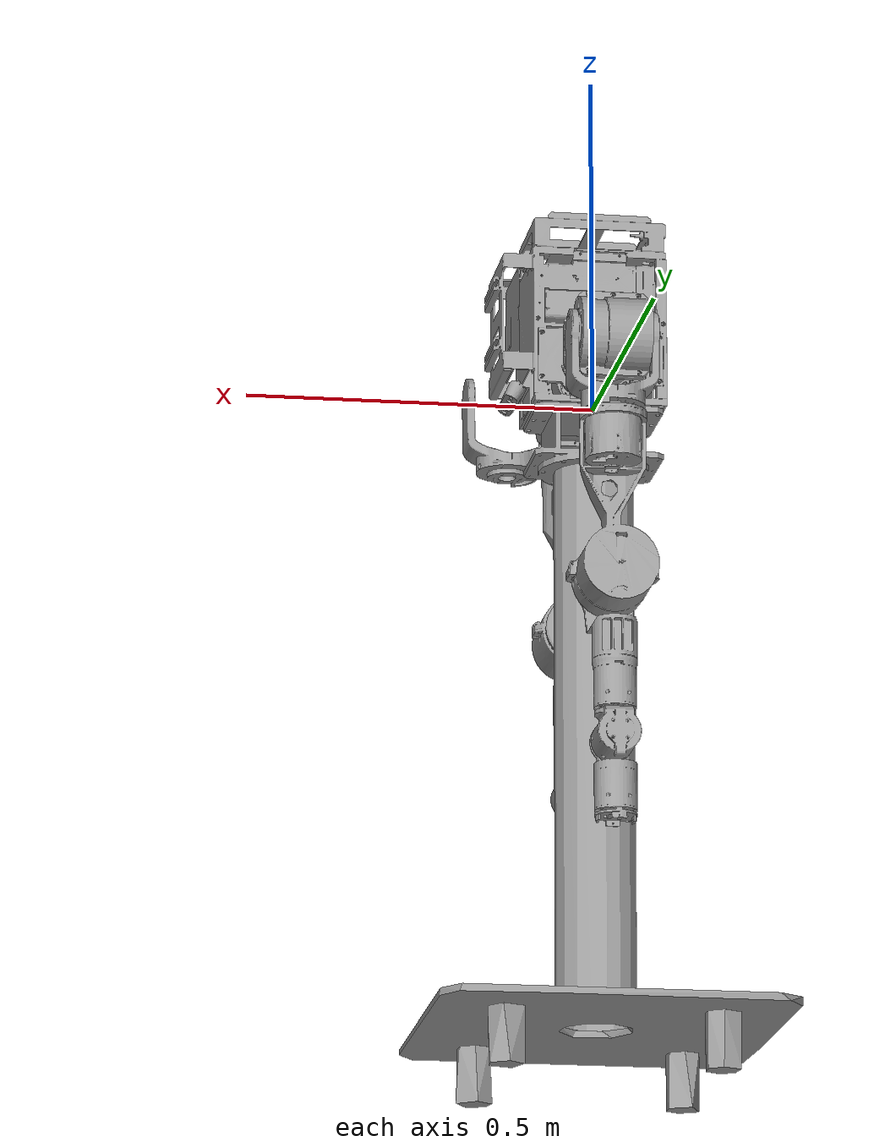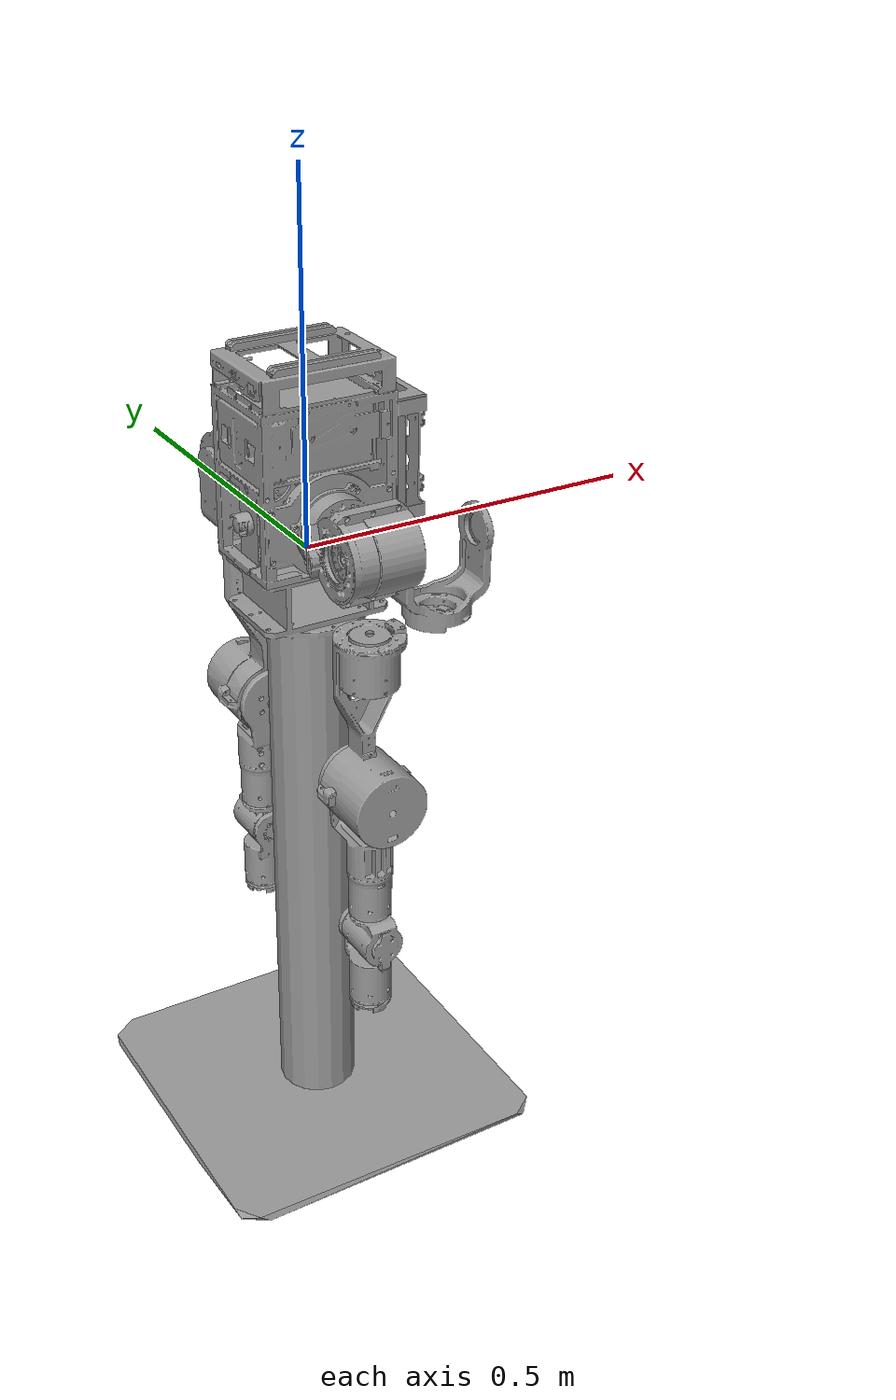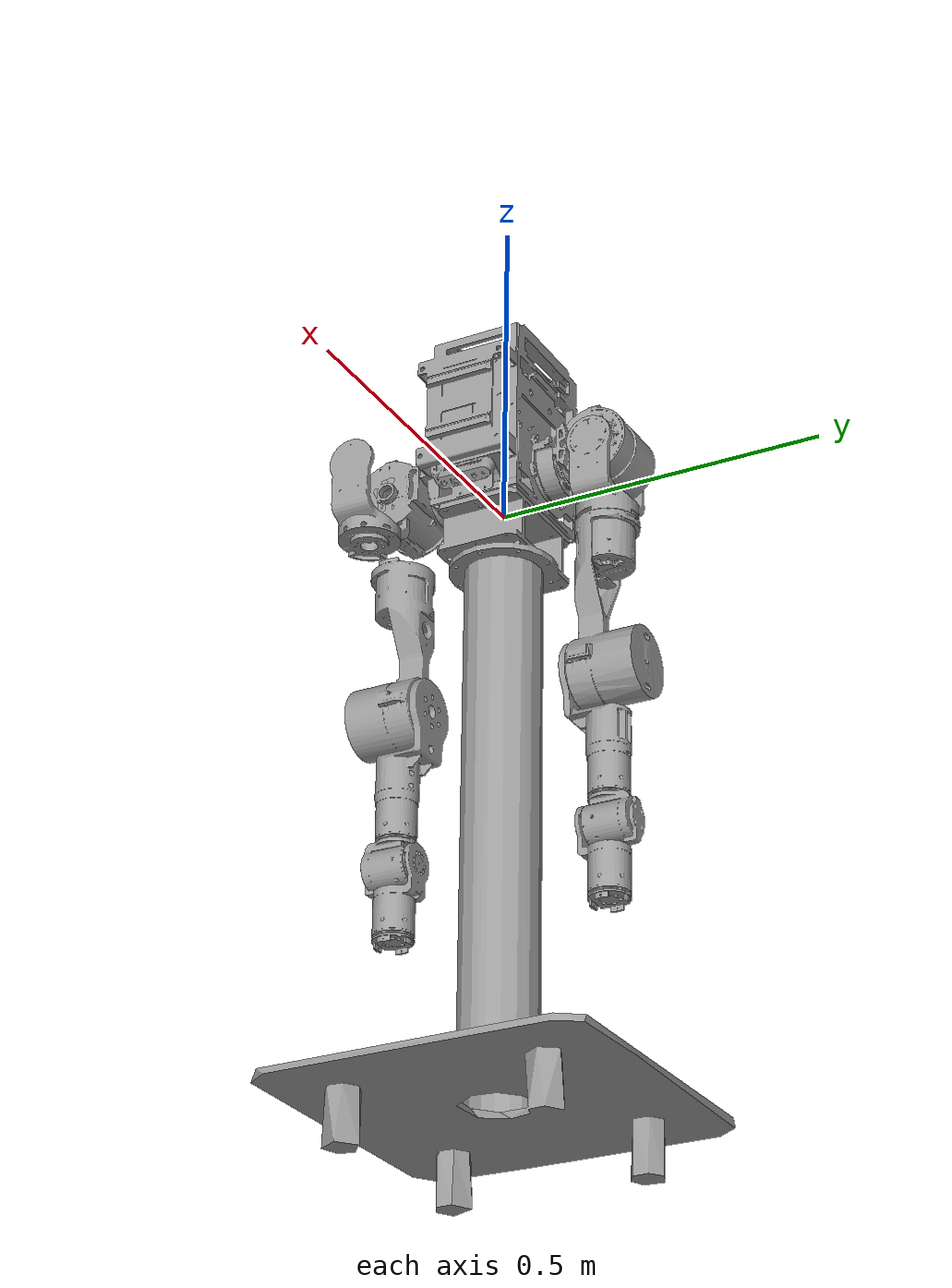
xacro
<?xml version="1.0"?>

<robot name="arm_tron2_description" xmlns:xacro="http://www.ros.org/wiki/xacro">
    <xacro:arg name="use_gazebo" default="false"/>
    <xacro:arg name="use_support" default="false"/>

    <!-- Include all component files -->
    <xacro:include filename="$(find robot_description)/tron2/ARM_TRON2/xacro/const.xacro"/>
    <xacro:include filename="$(find robot_description)/tron2/ARM_TRON2/xacro/materials.xacro"/>
    <xacro:include filename="$(find robot_description)/tron2/ARM_TRON2/xacro/arm.xacro"/>
    <xacro:include filename="$(find robot_description)/tron2/ARM_TRON2/xacro/gazebo.xacro"/>
    <xacro:include filename="$(find robot_description)/tron2/ARM_TRON2/xacro/ros2_control_interface.xacro"/>

    <!-- Support mode will add an additional stick on the top -->
    <xacro:if value="$(arg use_support)">
        <link name="world"/>
        <joint name="base_static_Joint" type="fixed">
            <origin rpy="0 0 0" xyz="0 0 0.3"/>
            <parent link="world"/>
            <child link="base_Link"/>
        </joint>
    </xacro:if>

    <!-- IMU Link -->
    <joint name="limx_imu_joint" type="fixed">
        <origin rpy="0. 0. 0." xyz="0. 0. 0."/>
        <parent link="base_Link"/>
        <child link="limx_imu"/>
    </joint>

    <link name="limx_imu">
        <inertial>
            <mass value="${imu_mass}"/>
            <origin rpy="0 0 0" xyz="0 0 0"/>
            <inertia ixx="0.000001" ixy="0" ixz="0" iyy="0.000001" iyz="0" izz="0.000001"/>
        </inertial>
        <visual>
            <origin rpy="0 0 0" xyz="0 0 0"/>
            <geometry>
                <box size="0.015 0.015 0.004"/>
            </geometry>
            <material name="orange"/>
        </visual>
    </link>

    <!-- Base Link -->
    <link name="base_Link">
        <inertial>
            <origin xyz="${base_com_x} ${base_com_y} ${base_com_z}" rpy="0 0 0"/>
            <mass value="${base_mass}"/>
            <inertia ixx="${base_ixx}" ixy="${base_ixy}" ixz="${base_ixz}"
                     iyy="${base_iyy}" iyz="${base_iyz}" izz="${base_izz}"/>
        </inertial>
        <visual>
            <origin xyz="0 0 0" rpy="0 0 0"/>
            <geometry>
                <mesh filename="package://robot_description/tron2/ARM_TRON2/meshes/base_Link.STL"/>
            </geometry>
            <material name="grey"/>
        </visual>
        <collision>
            <origin xyz="0 0 0" rpy="0 0 0"/>
            <geometry>
                <mesh filename="package://robot_description/tron2/ARM_TRON2/meshes/base_Link.STL"/>
            </geometry>
        </collision>
    </link>

    <!-- Additional base links -->
    <joint name="base_2_Joint" type="fixed">
        <origin xyz="-0.00044 9e-05 -0.08605" rpy="0 0 0"/>
        <parent link="base_Link"/>
        <child link="base_2_Link"/>
        <axis xyz="0 0 0"/>
    </joint>

    <link name="base_2_Link">
        <inertial>
            <origin xyz="${base_2_com_x} ${base_2_com_y} ${base_2_com_z}" rpy="0 0 0"/>
            <mass value="${base_2_mass}"/>
            <inertia ixx="0" ixy="0" ixz="0"
                     iyy="0" iyz="0" izz="0"/>
        </inertial>
        <visual>
            <origin xyz="0 0 0" rpy="0 0 0"/>
            <geometry>
                <mesh filename="package://robot_description/tron2/ARM_TRON2/meshes/base_2_Link.STL"/>
            </geometry>
            <material name="grey"/>
        </visual>
        <collision>
            <origin xyz="0 0 0" rpy="0 0 0"/>
            <geometry>
                <mesh filename="package://robot_description/tron2/ARM_TRON2/meshes/base_2_Link.STL"/>
            </geometry>
        </collision>
    </link>

    <joint name="base_3_joint" type="fixed">
        <origin xyz="0.0 0.0 -0.809" rpy="0 0 0"/>
        <parent link="base_2_Link"/>
        <child link="base_3_Link"/>
        <axis xyz="0 0 0"/>
    </joint>

    <link name="base_3_Link">
        <inertial>
            <origin xyz="${base_3_com_x} ${base_3_com_y} ${base_3_com_z}" rpy="0 0 0"/>
            <mass value="${base_3_mass}"/>
            <inertia ixx="0" ixy="0" ixz="0"
                     iyy="0" iyz="0" izz="0"/>
        </inertial>
        <visual>
            <origin xyz="0 0 0" rpy="0 0 0"/>
            <geometry>
                <mesh filename="package://robot_description/tron2/ARM_TRON2/meshes/base_3_Link.STL"/>
            </geometry>
            <material name="grey"/>
        </visual>
        <collision>
            <origin xyz="0 0 0" rpy="0 0 0"/>
            <geometry>
                <mesh filename="package://robot_description/tron2/ARM_TRON2/meshes/base_3_Link.STL"/>
            </geometry>
        </collision>
    </link>

    <!-- Left and Right Arms -->
    <xacro:arm name="L" mirror="1">
        <origin rpy="0 0 0" xyz="0 0 0"/>
    </xacro:arm>

    <xacro:arm name="R" mirror="-1">
        <origin rpy="0 0 0" xyz="0 0 0"/>
    </xacro:arm>

    <!-- ROS2 Control Configuration -->
    <xacro:if value="$(arg use_gazebo)">
        <ros2_control name="tron2_gazebo_ros2_control_settings" type="system">
            <hardware>
                <plugin>tron2_gazebo/Tron2HWSim</plugin>
            </hardware>
            <xacro:arm_ros2_control_interface arm_name="L"/>
            <xacro:arm_ros2_control_interface arm_name="R"/>
            <sensor name="imu_sensor">
                <frame_id name="limx_imu"/>
                <state_interface name="orientation.x"/>
                <state_interface name="orientation.y"/>
                <state_interface name="orientation.z"/>
                <state_interface name="orientation.w"/>
                <state_interface name="angular_velocity.x"/>
                <state_interface name="angular_velocity.y"/>
                <state_interface name="angular_velocity.z"/>
                <state_interface name="linear_acceleration.x"/>
                <state_interface name="linear_acceleration.y"/>
                <state_interface name="linear_acceleration.z"/>
            </sensor>
        </ros2_control>

        <gazebo>
            <plugin filename="libgazebo_ros2_control.so" name="gazebo_ros2_control">
                <robot_sim_type>tron2_gazebo/Tron2HWSim</robot_sim_type>
                <parameters>$(find tron2_gazebo)/config/default_tron2.yaml</parameters>
            </plugin>
        </gazebo>
    </xacro:if>

</robot>

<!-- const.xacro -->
<robot name="arm_tron2" xmlns:xacro="http://www.ros.org/wiki/xacro">

    <!-- Constants for robot dimensions -->
    <xacro:property name="PI" value="3.1415926535897931"/>

    <!-- joint limits -->
    <xacro:property name="damping" value="0.0"/>
    <xacro:property name="friction" value="0.0"/>

    <!-- IMU parameters -->
    <xacro:property name="imu_mass" value="0.01"/>

    <!-- Base Link parameters -->
    <xacro:property name="base_mass" value="8.041"/>
    <xacro:property name="base_com_x" value="7.013E-03"/>
    <xacro:property name="base_com_y" value="0.040E-03"/>
    <xacro:property name="base_com_z" value="100.262E-03"/>
    <xacro:property name="base_ixx" value="65206.281E-06"/>
    <xacro:property name="base_ixy" value="263.326E-06"/>
    <xacro:property name="base_ixz" value="1546.898E-06"/>
    <xacro:property name="base_iyy" value="67132.292E-06"/>
    <xacro:property name="base_iyz" value="-8.654E-06"/>
    <xacro:property name="base_izz" value="58274.035E-06"/>

    <!-- Abad Link parameters (left) -->
    <xacro:property name="abad_mass" value="2.426"/>
    <xacro:property name="abad_com_x" value="10.597E-03"/>
    <xacro:property name="abad_com_y" value="59.042E-03"/>
    <xacro:property name="abad_com_z" value="-0.086E-03"/>
    <xacro:property name="abad_ixx" value="3858.889E-06"/>
    <xacro:property name="abad_ixy" value="-86.387E-06"/>
    <xacro:property name="abad_ixz" value="-9.506E-06"/>
    <xacro:property name="abad_iyy" value="4137.575E-06"/>
    <xacro:property name="abad_iyz" value="-0.429E-06"/>
    <xacro:property name="abad_izz" value="4077.094E-06"/>

    <!-- Hip Link parameters (left) -->
    <xacro:property name="hip_mass" value="0.503"/>
    <xacro:property name="hip_com_x" value="-47.813E-03"/>
    <xacro:property name="hip_com_y" value="0.265E-03"/>
    <xacro:property name="hip_com_z" value="-58.577E-03"/>
    <xacro:property name="hip_ixx" value="1254.656E-06"/>
    <xacro:property name="hip_ixy" value="-2.958E-06"/>
    <xacro:property name="hip_ixz" value="-20.051E-06"/>
    <xacro:property name="hip_iyy" value="2046.419E-06"/>
    <xacro:property name="hip_iyz" value="6.867E-06"/>
    <xacro:property name="hip_izz" value="1300.557E-06"/>

    <!-- Yaw Link parameters (left) -->
    <xacro:property name="yaw_mass" value="3.436"/>
    <xacro:property name="yaw_com_x" value="0.048E-03"/>
    <xacro:property name="yaw_com_y" value="-5.739E-03"/>
    <xacro:property name="yaw_com_z" value="-169.935E-03"/>
    <xacro:property name="yaw_ixx" value="35177.279E-06"/>
    <xacro:property name="yaw_ixy" value="-8.837E-06"/>
    <xacro:property name="yaw_ixz" value="35.725E-06"/>
    <xacro:property name="yaw_iyy" value="35265.280E-06"/>
    <xacro:property name="yaw_iyz" value="-379.998E-06"/>
    <xacro:property name="yaw_izz" value="4712.777E-06"/>

    <!-- Knee Link parameters (left) -->
    <xacro:property name="knee_mass" value="1.192"/>
    <xacro:property name="knee_com_x" value="0.007E-03"/>
    <xacro:property name="knee_com_y" value="29.496E-03"/>
    <xacro:property name="knee_com_z" value="-111.270E-03"/>
    <xacro:property name="knee_ixx" value="5004.847E-06"/>
    <xacro:property name="knee_ixy" value="-0.362E-06"/>
    <xacro:property name="knee_ixz" value="-3.512E-06"/>
    <xacro:property name="knee_iyy" value="4709.215E-06"/>
    <xacro:property name="knee_iyz" value="1138.592E-06"/>
    <xacro:property name="knee_izz" value="1142.402E-06"/>

    <!-- Wrist Yaw1 Link parameters (left) -->
    <xacro:property name="wrist_yaw1_mass" value="0.639"/>
    <xacro:property name="wrist_yaw1_com_x" value="-0.069E-03"/>
    <xacro:property name="wrist_yaw1_com_y" value="4.349E-03"/>
    <xacro:property name="wrist_yaw1_com_z" value="-34.875E-03"/>
    <xacro:property name="wrist_yaw1_ixx" value="524.851E-06"/>
    <xacro:property name="wrist_yaw1_ixy" value="1.091E-06"/>
    <xacro:property name="wrist_yaw1_ixz" value="-0.270E-06"/>
    <xacro:property name="wrist_yaw1_iyy" value="456.736E-06"/>
    <xacro:property name="wrist_yaw1_iyz" value="-1.249E-06"/>
    <xacro:property name="wrist_yaw1_izz" value="473.489E-06"/>

    <!-- Wrist Roll Link parameters (left) -->
    <xacro:property name="wrist_roll_mass" value="0.643"/>
    <xacro:property name="wrist_roll_com_x" value="0.068E-03"/>
    <xacro:property name="wrist_roll_com_y" value="27.310E-03"/>
    <xacro:property name="wrist_roll_com_z" value="-66.262E-03"/>
    <xacro:property name="wrist_roll_ixx" value="810.706E-06"/>
    <xacro:property name="wrist_roll_ixy" value="-0.029E-06"/>
    <xacro:property name="wrist_roll_ixz" value="-0.798E-06"/>
    <xacro:property name="wrist_roll_iyy" value="745.238E-06"/>
    <xacro:property name="wrist_roll_iyz" value="138.208E-06"/>
    <xacro:property name="wrist_roll_izz" value="472.366E-06"/>

    <!-- Wrist Yaw2 Link parameters (left) -->
    <xacro:property name="wrist_yaw2_mass" value="0.033"/>
    <xacro:property name="wrist_yaw2_com_x" value="-0.053E-03"/>
    <xacro:property name="wrist_yaw2_com_y" value="0.442E-03"/>
    <xacro:property name="wrist_yaw2_com_z" value="-3.729E-03"/>
    <xacro:property name="wrist_yaw2_ixx" value="8.375E-06"/>
    <xacro:property name="wrist_yaw2_ixy" value="-0.036E-06"/>
    <xacro:property name="wrist_yaw2_ixz" value="-0.003E-06"/>
    <xacro:property name="wrist_yaw2_iyy" value="7.966E-06"/>
    <xacro:property name="wrist_yaw2_iyz" value="0.068E-06"/>
    <xacro:property name="wrist_yaw2_izz" value="15.814E-06"/>

    <!-- Additional base links -->
    <xacro:property name="base_2_mass" value="0.1"/>
    <xacro:property name="base_2_com_x" value="16.961E-03"/>
    <xacro:property name="base_2_com_y" value="-0.397E-03"/>
    <xacro:property name="base_2_com_z" value="77.46E-03"/>

    <xacro:property name="base_3_mass" value="0.1"/>
    <xacro:property name="base_3_com_x" value="16.961E-03"/>
    <xacro:property name="base_3_com_y" value="-0.397E-03"/>
    <xacro:property name="base_3_com_z" value="77.46E-03"/>

    <!-- Joint positions and orientations -->
    <!-- Abad joint position -->
    <xacro:property name="abad_offset_x" value="-0.00049"/>
    <xacro:property name="abad_offset_y" value="0.10649"/>
    <xacro:property name="abad_offset_z" value="0.0586"/>

    <!-- Hip joint position -->
    <xacro:property name="hip_offset_x" value="0.0497"/>
    <xacro:property name="hip_offset_y" value="0.062"/>
    <xacro:property name="hip_offset_z" value="0.0"/>

    <!-- Yaw joint position -->
    <xacro:property name="yaw_offset_x" value="-0.0497"/>
    <xacro:property name="yaw_offset_y" value="0.0"/>
    <xacro:property name="yaw_offset_z" value="-0.1127"/>

    <!-- Knee joint position -->
    <xacro:property name="knee_offset_x" value="0.0"/>
    <xacro:property name="knee_offset_y" value="-0.04115"/>
    <xacro:property name="knee_offset_z" value="-0.2373"/>

    <!-- Wrist yaw1 joint position -->
    <xacro:property name="wrist_yaw1_offset_x" value="0.0"/>
    <xacro:property name="wrist_yaw1_offset_y" value="0.04115"/>
    <xacro:property name="wrist_yaw1_offset_z" value="-0.1963"/>

    <!-- Wrist roll joint position -->
    <xacro:property name="wrist_roll_offset_x" value="0.0"/>
    <xacro:property name="wrist_roll_offset_y" value="-0.031"/>
    <xacro:property name="wrist_roll_offset_z" value="-0.038"/>

    <!-- Wrist yaw2 joint position -->
    <xacro:property name="wrist_yaw2_offset_x" value="0.0"/>
    <xacro:property name="wrist_yaw2_offset_y" value="0.031"/>
    <xacro:property name="wrist_yaw2_offset_z" value="-0.1083"/>

    <!-- Joint limits -->
    <!-- Abad joint limits -->
    <xacro:property name="abad_lower" value="-3.141592653589793"/>
    <xacro:property name="abad_upper" value="2.600540585471551"/>
    <xacro:property name="abad_effort" value="130"/>
    <xacro:property name="abad_velocity" value="12.57"/>

    <!-- Hip joint limits -->
    <xacro:property name="hip_L_lower" value="-0.2605776573227534"/>
    <xacro:property name="hip_L_upper" value="2.1131489961203007"/>
    <xacro:property name="hip_R_lower" value="-2.1131489961203007"/>
    <xacro:property name="hip_R_upper" value="0.2605776573227534"/>
    <xacro:property name="hip_effort" value="130"/>
    <xacro:property name="hip_velocity" value="12.57"/>

    <!-- Yaw joint limits -->
    <xacro:property name="yaw_L_lower" value="-2.705260340591211"/>
    <xacro:property name="yaw_L_upper" value="1.4835298641951802"/>
    <xacro:property name="yaw_R_lower" value="-1.4835298641951802"/>
    <xacro:property name="yaw_R_upper" value="2.705260340591211"/>
    <xacro:property name="yaw_effort" value="40"/>
    <xacro:property name="yaw_velocity" value="31.83"/>

    <!-- Knee joint limits -->
    <xacro:property name="knee_lower" value="-2.6179938779914944"/>
    <xacro:property name="knee_upper" value="2.6179938779914944"/>
    <xacro:property name="knee_effort" value="130"/>
    <xacro:property name="knee_velocity" value="12.57"/>

    <!-- Wrist yaw1 joint limits -->
    <xacro:property name="wrist_yaw1_lower" value="-2.844886680750757"/>
    <xacro:property name="wrist_yaw1_upper" value="2.844886680750757"/>
    <xacro:property name="wrist_yaw1_effort" value="20"/>
    <xacro:property name="wrist_yaw1_velocity" value="17.8"/>

    <!-- Wrist roll joint limits -->
    <xacro:property name="wrist_roll_lower" value="-1.710422666954443"/>
    <xacro:property name="wrist_roll_upper" value="1.710422666954443"/>
    <xacro:property name="wrist_roll_effort" value="20"/>
    <xacro:property name="wrist_roll_velocity" value="17.8"/>

    <!-- Wrist yaw2 joint limits -->
    <xacro:property name="wrist_yaw2_lower" value="-2.8797932657906435"/>
    <xacro:property name="wrist_yaw2_upper" value="2.8797932657906435"/>
    <xacro:property name="wrist_yaw2_effort" value="20"/>
    <xacro:property name="wrist_yaw2_velocity" value="17.8"/>

</robot>

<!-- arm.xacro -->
<robot xmlns:xacro="http://www.ros.org/wiki/xacro">

    <xacro:include filename="$(find robot_description)/tron2/ARM_TRON2/xacro/transmission.xacro"/>

    <xacro:macro name="arm" params="name mirror *origin">

        <joint name="abad_${name}_Joint" type="revolute">
            <origin xyz="${abad_offset_x} ${abad_offset_y*mirror} ${abad_offset_z}" rpy="0 0 0"/>
            <parent link="base_Link"/>
            <child link="abad_${name}_Link"/>
            <axis xyz="0 1 0"/>
            <limit lower="${abad_lower}" upper="${abad_upper}" effort="${abad_effort}" velocity="${abad_velocity}"/>
        </joint>

        <link name="abad_${name}_Link">
            <inertial>
                <origin xyz="${abad_com_x} ${abad_com_y*mirror} ${abad_com_z}" rpy="0 0 0"/>
                <mass value="${abad_mass}"/>
                <inertia ixx="${abad_ixx}" ixy="${abad_ixy*mirror}" ixz="${abad_ixz}"
                         iyy="${abad_iyy}" iyz="${abad_iyz*mirror}" izz="${abad_izz}"/>
            </inertial>
            <visual>
                <origin xyz="0 0 0" rpy="0 0 0"/>
                <geometry>
                    <mesh filename="package://robot_description/tron2/ARM_TRON2/meshes/abad_${name}_Link.STL"/>
                </geometry>
                <material name="grey"/>
            </visual>
            <collision>
                <origin xyz="0 0 0" rpy="0 0 0"/>
                <geometry>
                    <mesh filename="package://robot_description/tron2/ARM_TRON2/meshes/abad_${name}_Link.STL"/>
                </geometry>
            </collision>
        </link>

        <joint name="hip_${name}_Joint" type="revolute">
            <origin xyz="${hip_offset_x} ${hip_offset_y*mirror} ${hip_offset_z}" rpy="0 0 0"/>
            <parent link="abad_${name}_Link"/>
            <child link="hip_${name}_Link"/>
            <axis xyz="1 0 0"/>
            <xacro:if value="${name == 'L'}">
                <limit lower="${hip_L_lower}" upper="${hip_L_upper}" effort="${hip_effort}" velocity="${hip_velocity}"/>
            </xacro:if>
            <xacro:if value="${name == 'R'}">
                <limit lower="${hip_R_lower}" upper="${hip_R_upper}" effort="${hip_effort}" velocity="${hip_velocity}"/>
            </xacro:if>
        </joint>

        <link name="hip_${name}_Link">
            <inertial>
                <origin xyz="${hip_com_x} ${hip_com_y*mirror} ${hip_com_z}" rpy="0 0 0"/>
                <mass value="${hip_mass}"/>
                <inertia ixx="${hip_ixx}" ixy="${hip_ixy*mirror}" ixz="${hip_ixz}"
                         iyy="${hip_iyy}" iyz="${hip_iyz*mirror}" izz="${hip_izz}"/>
            </inertial>
            <visual>
                <origin xyz="0 0 0" rpy="0 0 0"/>
                <geometry>
                    <mesh filename="package://robot_description/tron2/ARM_TRON2/meshes/hip_${name}_Link.STL"/>
                </geometry>
                <material name="grey"/>
            </visual>
            <collision>
                <origin xyz="0 0 0" rpy="0 0 0"/>
                <geometry>
                    <mesh filename="package://robot_description/tron2/ARM_TRON2/meshes/hip_${name}_Link.STL"/>
                </geometry>
            </collision>
        </link>

        <joint name="yaw_${name}_Joint" type="revolute">
            <origin xyz="${yaw_offset_x} ${yaw_offset_y*mirror} ${yaw_offset_z}" rpy="0 0 0"/>
            <parent link="hip_${name}_Link"/>
            <child link="yaw_${name}_Link"/>
            <axis xyz="0 0 1"/>
            <xacro:if value="${name == 'L'}">
                <limit lower="${yaw_L_lower}" upper="${yaw_L_upper}" effort="${yaw_effort}" velocity="${yaw_velocity}"/>
            </xacro:if>
            <xacro:if value="${name == 'R'}">
                <limit lower="${yaw_R_lower}" upper="${yaw_R_upper}" effort="${yaw_effort}" velocity="${yaw_velocity}"/>
            </xacro:if>
        </joint>

        <link name="yaw_${name}_Link">
            <inertial>
                <origin xyz="${yaw_com_x} ${yaw_com_y*mirror} ${yaw_com_z}" rpy="0 0 0"/>
                <mass value="${yaw_mass}"/>
                <inertia ixx="${yaw_ixx}" ixy="${yaw_ixy*mirror}" ixz="${yaw_ixz}"
                         iyy="${yaw_iyy}" iyz="${yaw_iyz*mirror}" izz="${yaw_izz}"/>
            </inertial>
            <visual>
                <origin xyz="0 0 0" rpy="0 0 0"/>
                <geometry>
                    <mesh filename="package://robot_description/tron2/ARM_TRON2/meshes/yaw_${name}_Link.STL"/>
                </geometry>
                <material name="grey"/>
            </visual>
            <collision>
                <origin xyz="0 0 0" rpy="0 0 0"/>
                <geometry>
                    <mesh filename="package://robot_description/tron2/ARM_TRON2/meshes/yaw_${name}_Link.STL"/>
                </geometry>
            </collision>
        </link>

        <joint name="knee_${name}_Joint" type="revolute">
            <origin xyz="${knee_offset_x} ${knee_offset_y*mirror} ${knee_offset_z}" rpy="0 0 0"/>
            <parent link="yaw_${name}_Link"/>
            <child link="knee_${name}_Link"/>
            <axis xyz="0 1 0"/>
            <limit lower="${knee_lower}" upper="${knee_upper}" effort="${knee_effort}" velocity="${knee_velocity}"/>
        </joint>

        <link name="knee_${name}_Link">
            <inertial>
                <origin xyz="${knee_com_x} ${knee_com_y*mirror} ${knee_com_z}" rpy="0 0 0"/>
                <mass value="${knee_mass}"/>
                <inertia ixx="${knee_ixx}" ixy="${knee_ixy*mirror}" ixz="${knee_ixz}"
                         iyy="${knee_iyy}" iyz="${knee_iyz*mirror}" izz="${knee_izz}"/>
            </inertial>
            <visual>
                <origin xyz="0 0 0" rpy="0 0 0"/>
                <geometry>
                    <mesh filename="package://robot_description/tron2/ARM_TRON2/meshes/knee_${name}_Link.STL"/>
                </geometry>
                <material name="grey"/>
            </visual>
            <collision>
                <origin xyz="0 0 0" rpy="0 0 0"/>
                <geometry>
                    <mesh filename="package://robot_description/tron2/ARM_TRON2/meshes/knee_${name}_Link.STL"/>
                </geometry>
            </collision>
        </link>

        <joint name="wrist_yaw1_${name}_Joint" type="revolute">
            <origin xyz="${wrist_yaw1_offset_x} ${wrist_yaw1_offset_y*mirror} ${wrist_yaw1_offset_z}" rpy="0 0 0"/>
            <parent link="knee_${name}_Link"/>
            <child link="wrist_yaw1_${name}_Link"/>
            <axis xyz="0 0 1"/>
            <limit lower="${wrist_yaw1_lower}" upper="${wrist_yaw1_upper}" effort="${wrist_yaw1_effort}" velocity="${wrist_yaw1_velocity}"/>
        </joint>

        <link name="wrist_yaw1_${name}_Link">
            <inertial>
                <origin xyz="${wrist_yaw1_com_x} ${wrist_yaw1_com_y*mirror} ${wrist_yaw1_com_z}" rpy="0 0 0"/>
                <mass value="${wrist_yaw1_mass}"/>
                <inertia ixx="${wrist_yaw1_ixx}" ixy="${wrist_yaw1_ixy*mirror}" ixz="${wrist_yaw1_ixz}"
                         iyy="${wrist_yaw1_iyy}" iyz="${wrist_yaw1_iyz*mirror}" izz="${wrist_yaw1_izz}"/>
            </inertial>
            <visual>
                <origin xyz="0 0 0" rpy="0 0 0"/>
                <geometry>
                    <mesh filename="package://robot_description/tron2/ARM_TRON2/meshes/wrist_yaw1_${name}_Link.STL"/>
                </geometry>
                <material name="grey"/>
            </visual>
            <collision>
                <origin xyz="0 0 0" rpy="0 0 0"/>
                <geometry>
                    <mesh filename="package://robot_description/tron2/ARM_TRON2/meshes/wrist_yaw1_${name}_Link.STL"/>
                </geometry>
            </collision>
        </link>

        <joint name="wrist_roll_${name}_Joint" type="revolute">
            <origin xyz="${wrist_roll_offset_x} ${wrist_roll_offset_y*mirror} ${wrist_roll_offset_z}" rpy="0 0 0"/>
            <parent link="wrist_yaw1_${name}_Link"/>
            <child link="wrist_roll_${name}_Link"/>
            <axis xyz="0 1 0"/>
            <limit lower="${wrist_roll_lower}" upper="${wrist_roll_upper}" effort="${wrist_roll_effort}" velocity="${wrist_roll_velocity}"/>
        </joint>

        <link name="wrist_roll_${name}_Link">
            <inertial>
                <origin xyz="${wrist_roll_com_x} ${wrist_roll_com_y*mirror} ${wrist_roll_com_z}" rpy="0 0 0"/>
                <mass value="${wrist_roll_mass}"/>
                <inertia ixx="${wrist_roll_ixx}" ixy="${wrist_roll_ixy*mirror}" ixz="${wrist_roll_ixz}"
                         iyy="${wrist_roll_iyy}" iyz="${wrist_roll_iyz*mirror}" izz="${wrist_roll_izz}"/>
            </inertial>
            <visual>
                <origin xyz="0 0 0" rpy="0 0 0"/>
                <geometry>
                    <mesh filename="package://robot_description/tron2/ARM_TRON2/meshes/wrist_roll_${name}_Link.STL"/>
                </geometry>
                <material name="grey"/>
            </visual>
            <collision>
                <origin xyz="0 0 0" rpy="0 0 0"/>
                <geometry>
                    <mesh filename="package://robot_description/tron2/ARM_TRON2/meshes/wrist_roll_${name}_Link.STL"/>
                </geometry>
            </collision>
        </link>

        <joint name="wrist_yaw2_${name}_Joint" type="revolute">
            <origin xyz="${wrist_yaw2_offset_x} ${wrist_yaw2_offset_y*mirror} ${wrist_yaw2_offset_z}" rpy="0 0 0"/>
            <parent link="wrist_roll_${name}_Link"/>
            <child link="wrist_yaw2_${name}_Link"/>
            <axis xyz="0 0 1"/>
            <limit lower="${wrist_yaw2_lower}" upper="${wrist_yaw2_upper}" effort="${wrist_yaw2_effort}" velocity="${wrist_yaw2_velocity}"/>
        </joint>

        <link name="wrist_yaw2_${name}_Link">
            <inertial>
                <origin xyz="${wrist_yaw2_com_x} ${wrist_yaw2_com_y*mirror} ${wrist_yaw2_com_z}" rpy="0 0 0"/>
                <mass value="${wrist_yaw2_mass}"/>
                <inertia ixx="${wrist_yaw2_ixx}" ixy="${wrist_yaw2_ixy*mirror}" ixz="${wrist_yaw2_ixz}"
                         iyy="${wrist_yaw2_iyy}" iyz="${wrist_yaw2_iyz*mirror}" izz="${wrist_yaw2_izz}"/>
            </inertial>
            <visual>
                <origin xyz="0 0 0" rpy="0 0 0"/>
                <geometry>
                    <mesh filename="package://robot_description/tron2/ARM_TRON2/meshes/wrist_yaw2_${name}_Link.STL"/>
                </geometry>
                <material name="grey"/>
            </visual>
            <collision>
                <origin xyz="0 0 0" rpy="0 0 0"/>
                <geometry>
                    <mesh filename="package://robot_description/tron2/ARM_TRON2/meshes/wrist_yaw2_${name}_Link.STL"/>
                </geometry>
            </collision>
        </link>

        <!-- Hand contact -->
        <joint name="${name == 'L' and 'left' or 'right'}_hand_contact_joint" type="fixed">
            <origin xyz="0 0 0" rpy="0 0 0"/>
            <parent link="wrist_roll_${name}_Link"/>
            <child link="${name == 'L' and 'left' or 'right'}_hand_contact"/>
        </joint>

        <link name="${name == 'L' and 'left' or 'right'}_hand_contact">
            <inertial>
                <origin xyz="0.0 0.0 0.0" rpy="0 0 0"/>
                <mass value="0.00000001"/>
                <inertia ixx="0.0000001" ixy="0.0" ixz="0.0"
                         iyy="0.0000001" iyz="0.0" izz="0.0000001"/>
            </inertial>
            <visual>
                <origin xyz="0 0 0" rpy="0 0 0"/>
                <geometry>
                    <box size="0.001 0.001 0.001"/>
                </geometry>
                <material name="red">
                    <color rgba="1 0 0 1"/>
                </material>
            </visual>
        </link>

        <xacro:arm_transmission name="${name}"/>
    </xacro:macro>

</robot>
